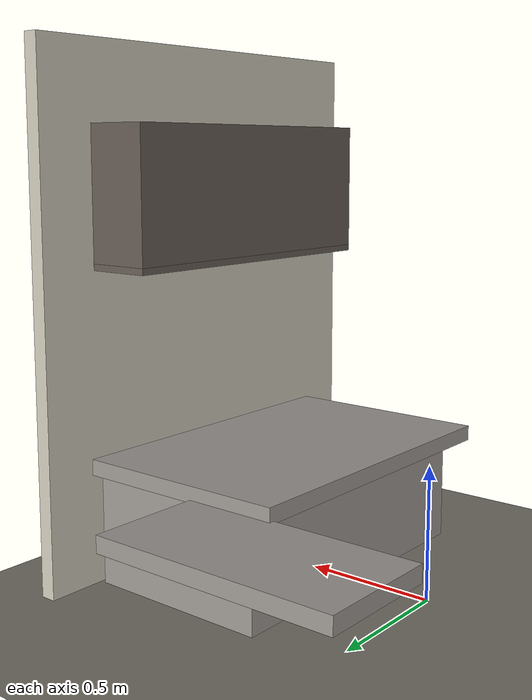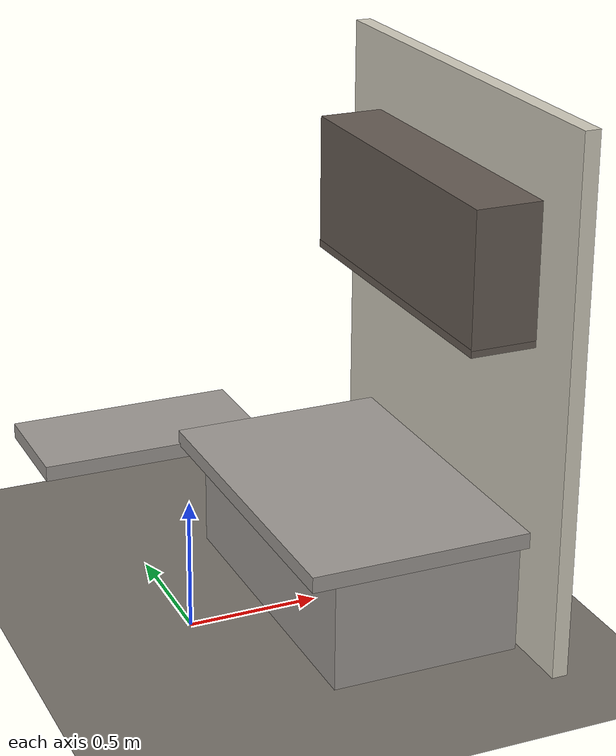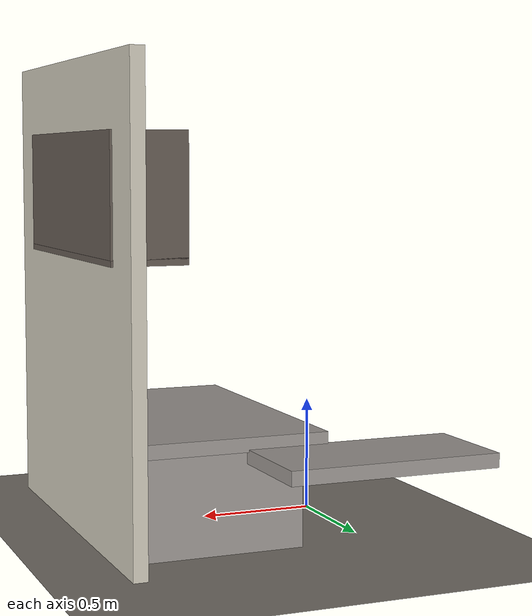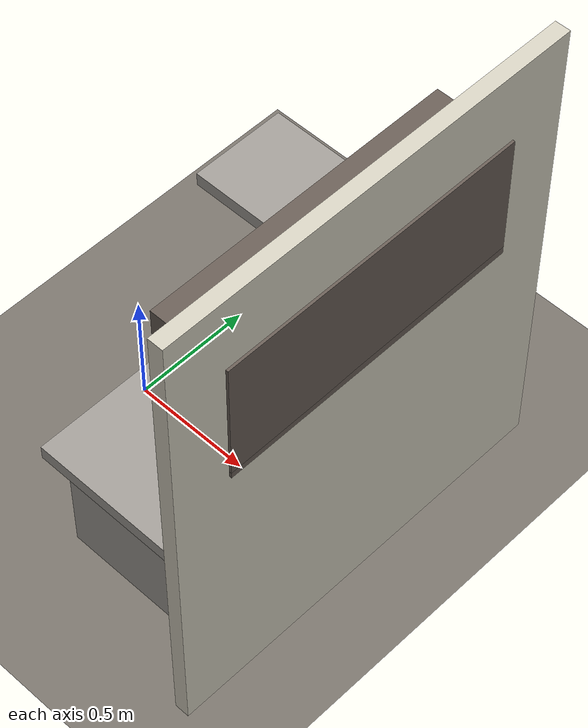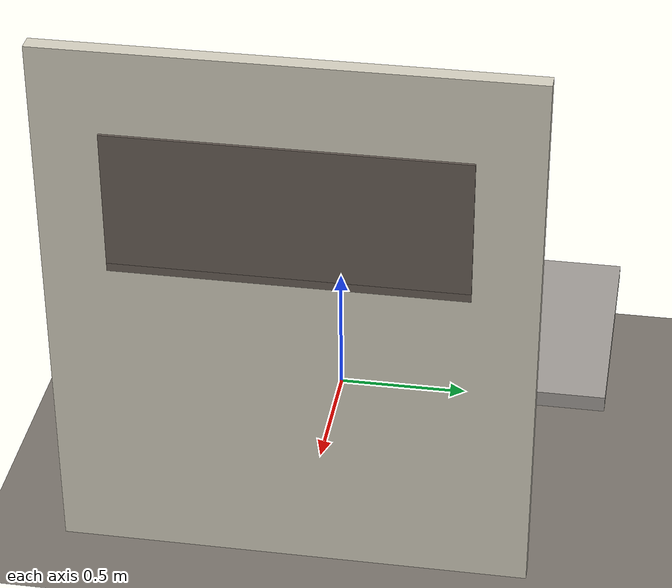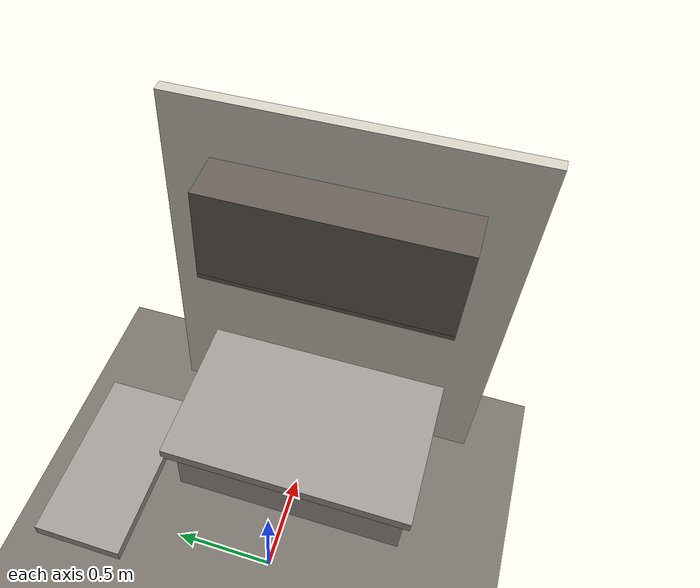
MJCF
<mujoco model="real_env_1_kitchen">
  <compiler angle="radian" autolimits="true" boundmass="0" balanceinertia="true"/>
  <option impratio="10" gravity="0 0 -9.8" integrator="implicitfast" cone="elliptic" jacobian="sparse" noslip_iterations="4">
    <flag multiccd="enable" contact="enable" warmstart="enable"/>
  </option>
  <size njmax="8000" nconmax="8000"/>
  <visual><global offwidth="1280" offheight="720"/><map znear="0.001"/>
    <headlight ambient="0.42 0.42 0.42" diffuse="0.55 0.55 0.55"/></visual>
  <asset>
    <texture name="woodtex" type="2d" builtin="flat" rgb1="0.62 0.60 0.58" width="32" height="32"/>
    <material name="wood" texture="woodtex" reflectance="0.05"/>
    <texture name="wood2tex" type="2d" builtin="flat" rgb1="0.40 0.36 0.33" width="32" height="32"/>
    <material name="wood2" texture="wood2tex" reflectance="0.05"/>
    <texture name="floortex" type="2d" builtin="checker" rgb1="0.50 0.48 0.45" rgb2="0.43 0.41 0.38" width="300" height="300"/>
    <material name="floormat" texture="floortex" texrepeat="10 10" reflectance="0.05"/>
  </asset>
  <default>
    <default class="furniture">
      <geom contype="8" conaffinity="15" group="0" friction="0.9 0.9 0.001"
            solref="0.02 1" solimp="0.998 0.998 0.001" density="700" material="wood"/>
    </default>
    <default class="furniture2">
      <geom contype="8" conaffinity="15" group="0" friction="0.9 0.9 0.001"
            solref="0.02 1" solimp="0.998 0.998 0.001" density="700" material="wood2"/>
    </default>
  </default>
  <worldbody>
    <light pos="0.3 0.5 2.6" dir="0 0 -1" diffuse="0.65 0.65 0.65"/>
    <light pos="-0.8 -0.8 2.2" dir="0.3 0.3 -1" diffuse="0.3 0.3 0.3"/>
    <geom name="floor" type="plane" size="5 5 0.1" pos="0 0 0" material="floormat" contype="8" conaffinity="15"/>
    <geom name="counter_top" type="box" pos="0.62 0 0.45" size="0.42 0.65 0.03" class="furniture"/>
    <geom name="counter_body" type="box" pos="0.66 0 0.21" size="0.36 0.62 0.21" class="furniture"/>
    <geom name="backsplash" type="box" pos="1.07 0 1.0" size="0.03 0.85 1.0" contype="8" conaffinity="15" rgba="0.82 0.80 0.74 1"/>
    <geom name="upper_cab" type="box" pos="0.95 0 1.45" size="0.16 0.62 0.25" class="furniture2"/>
    <geom name="upper_cab_bottom" type="box" pos="0.95 0 1.19" size="0.16 0.62 0.015" class="furniture2"/>
    <geom name="side_counter" type="box" pos="0.1 0.85 0.4" size="0.45 0.22 0.03" class="furniture"/>
    <site name="target_spot" pos="0.5 0.0 0.48" size="0.01" rgba="0 0 0 0"/>
  </worldbody>
</mujoco>
